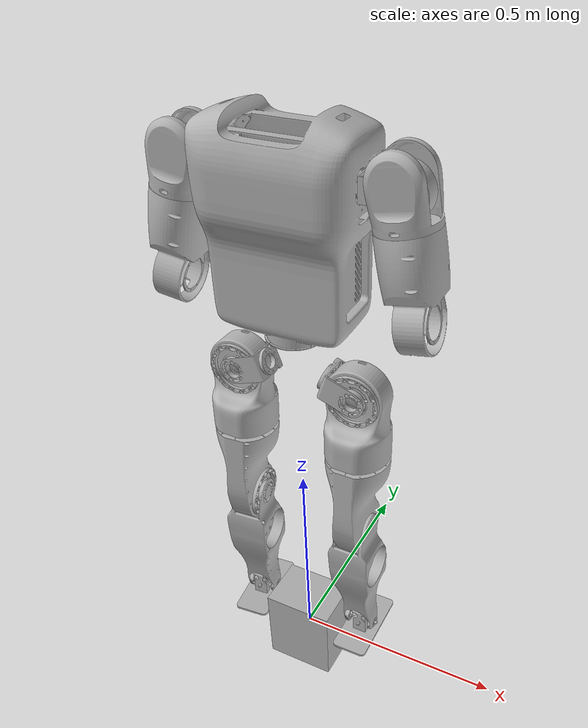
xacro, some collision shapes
<?xml version="1.0"?>
<robot name="Angad_Full_Assembly" xmlns:xacro="http://www.ros.org/wiki/xacro">

  <xacro:include filename="$(find Angad_Full_Assembly_description)/urdf/materials.xacro" />
  <xacro:include filename="$(find Angad_Full_Assembly_description)/urdf/Angad_Full_Assembly.gazebo" />
  <xacro:include
    filename="$(find Angad_Full_Assembly_description)/urdf/Angad_Full_Assembly.ros2_control.xacro" />
  <link name="base_link">
    <inertial>
      <origin xyz="0.002978049443025171 3.331729238924102e-05 0.8249140352934465" rpy="0 0 0" />
      <mass value="5.565" />
      <inertia ixx="0.0272538" iyy="0.0301722" izz="0.0318504" ixy="0" iyz="-6.3931e-06"
        ixz="-8.63068e-05" />
    </inertial>
    <visual>
      <origin xyz="0 0 0" rpy="0 0 0" />
      <geometry>
        <mesh filename="file://$(find Angad_Full_Assembly_description)/meshes/base_link.stl"
          scale="0.001 0.001 0.001" />
      </geometry>
      <material name="silver" />
    </visual>
    <collision>
      <origin xyz="0 0 0" rpy="0 0 0" />
      <geometry>
        <box size="0.174 0.13 0.213089" />
      </geometry>
    </collision>
  </link>

  <link name="hip_L_1">
    <inertial>
      <origin xyz="0.03854907436256218 -0.00377537649362079 -0.014028849509831631" rpy="0 0 0" />
      <mass value="1.008" />
      <inertia ixx="0.00115998" iyy="0.00157855" izz="0.00190361" ixy="0.000204833"
        iyz="-7.34726e-05" ixz="0.000311702" />
    </inertial>
    <visual>
      <origin xyz="-0.06406 -0.0 -0.80394" rpy="0 0 0" />
      <geometry>
        <mesh filename="file://$(find Angad_Full_Assembly_description)/meshes/hip_L_1.stl"
          scale="0.001 0.001 0.001" />
      </geometry>
      <material name="silver" />
    </visual>
    <collision>
      <origin xyz="-0.06406 -0.0 -0.80394" rpy="0 0 0" />
      <geometry>
        <box size="0.130905 0.0571 0.112" />
      </geometry>
    </collision>
  </link>

  <link name="hip_R_1">
    <inertial>
      <origin xyz="-0.038552261262815704 -0.003775357521075904 -0.014020100360895404" rpy="0 0 0" />
      <mass value="1.008" />
      <inertia ixx="0.00115998" iyy="0.00157855" izz="0.00190361" ixy="-0.000204833"
        iyz="-7.34726e-05" ixz="-0.000311702" />
    </inertial>
    <visual>
      <origin xyz="0.06406 -0.0 -0.80394" rpy="0 0 0" />
      <geometry>
        <mesh filename="file://$(find Angad_Full_Assembly_description)/meshes/hip_R_1.stl"
          scale="0.001 0.001 0.001" />
      </geometry>
      <material name="silver" />
    </visual>
    <collision>
      <origin xyz="0.06406 -0.0 -0.80394" rpy="0 0 0" />
      <geometry>
        <box size="0.130905 0.0571 0.112" />
      </geometry>
    </collision>
  </link>

  <link name="thigh_L_1">
    <inertial>
      <origin xyz="-1.40174504655588e-05 -0.030115272344603504 -0.08645138758904114" rpy="0 0 0" />
      <mass value="1.319" />
      <inertia ixx="0.00664321" iyy="0.00731815" izz="0.00393772" ixy="8.98835e-06"
        iyz="0.000276188" ixz="1.22568e-05" />
    </inertial>
    <visual>
      <origin xyz="-0.13829 -0.0315 -0.776903" rpy="0 0 0" />
      <geometry>
        <mesh filename="file://$(find Angad_Full_Assembly_description)/meshes/thigh_L_1.stl"
          scale="0.001 0.001 0.001" />
      </geometry>
      <material name="silver" />
    </visual>
    <collision>
      <origin xyz="-0.13829 -0.0315 -0.776903" rpy="0 0 0" />
      <geometry>
        <box size="0.11 0.112741 0.175" />
      </geometry>
    </collision>
  </link>

  <link name="thigh_R_1">
    <inertial>
      <origin xyz="-0.0020791884572767816 -0.030383815559322697 -0.0863687783674898" rpy="0 0 0" />
      <mass value="1.319" />
      <inertia ixx="0.00664117" iyy="0.00719671" izz="0.00381943" ixy="1.14208e-05"
        iyz="0.000270019" ixz="-7.17876e-05" />
    </inertial>
    <visual>
      <origin xyz="0.138263 -0.0315 -0.77683" rpy="0 0 0" />
      <geometry>
        <mesh filename="file://$(find Angad_Full_Assembly_description)/meshes/thigh_R_1.stl"
          scale="0.001 0.001 0.001" />
      </geometry>
      <material name="silver" />
    </visual>
    <collision>
      <origin xyz="0.138263 -0.0315 -0.77683" rpy="0 0 0" />
      <geometry>
        <box size="0.11 0.112741 0.175" />
      </geometry>
    </collision>
  </link>

  <link name="upper_knee_L_1">
    <inertial>
      <origin xyz="-0.0013353106898234268 -0.005517962362791416 -0.11408271066504616" rpy="0 0 0" />
      <mass value="2.264" />
      <inertia ixx="0.0219197" iyy="0.0193774" izz="0.00704322" ixy="2.59696e-05" iyz="-0.000436015"
        ixz="-0.000475653" />
    </inertial>
    <visual>
      <origin xyz="-0.138295 -0.005168 -0.620317" rpy="0 0 0" />
      <geometry>
        <mesh filename="file://$(find Angad_Full_Assembly_description)/meshes/upper_knee_L_1.stl"
          scale="0.001 0.001 0.001" />
      </geometry>
      <material name="silver" />
    </visual>
    <collision>
      <origin xyz="-0.138295 -0.005168 -0.620317" rpy="0 0 0" />
      <geometry>
        <box size="0.0625 0.125 0.3125" />
      </geometry>
    </collision>
  </link>

  <link name="upper_knee_R_1">
    <inertial>
      <origin xyz="-0.0007904776210841402 -0.005611532850717232 -0.11408357177758233" rpy="0 0 0" />
      <mass value="2.264" />
      <inertia ixx="0.0219137" iyy="0.0193988" izz="0.00702938" ixy="0.00022962" iyz="-0.000418237"
        ixz="0.000168115" />
    </inertial>
    <visual>
      <origin xyz="0.141977 -0.004808 -0.620349" rpy="0 0 0" />
      <geometry>
        <mesh filename="file://$(find Angad_Full_Assembly_description)/meshes/upper_knee_R_1.stl"
          scale="0.001 0.001 0.001" />
      </geometry>
      <material name="silver" />
    </visual>
    <collision>
      <origin xyz="0.141977 -0.004808 -0.620349" rpy="0 0 0" />
      <geometry>
        <box size="0.0625 0.125 0.3125" />
      </geometry>
    </collision>
  </link>

  <link name="lower_knee_L_1">
    <inertial>
      <origin xyz="-0.026381467582163642 0.002587818636810185 -0.14748715164304727" rpy="0 0 0" />
      <mass value="1.446" />
      <inertia ixx="0.0179909" iyy="0.0174857" izz="0.00337026" ixy="1.2e-05" iyz="0.00187816"
        ixz="-4.22513e-05" />
    </inertial>
    <visual>
      <origin xyz="-0.165295 -0.005033 -0.410617" rpy="0 0 0" />
      <geometry>
        <mesh filename="file://$(find Angad_Full_Assembly_description)/meshes/lower_knee_L_1.stl"
          scale="0.001 0.001 0.001" />
      </geometry>
      <material name="silver" />
    </visual>
    <collision>
      <origin xyz="-0.165295 -0.005033 -0.410617" rpy="0 0 0" />
      <geometry>
        <box size="0.087 0.052557 0.388142" />
      </geometry>
    </collision>
  </link>

  <link name="lower_knee_R_1">
    <inertial>
      <origin xyz="0.02249291366303005 0.004807172510886975 -0.14807185562679898" rpy="0 0 0" />
      <mass value="1.446" />
      <inertia ixx="0.0179724" iyy="0.0175592" izz="0.00343161" ixy="0.000133" iyz="0.00182317"
        ixz="-0.000495439" />
    </inertial>
    <visual>
      <origin xyz="0.172267 -0.001544 -0.411313" rpy="0 0 0" />
      <geometry>
        <mesh filename="file://$(find Angad_Full_Assembly_description)/meshes/lower_knee_R_1.stl"
          scale="0.001 0.001 0.001" />
      </geometry>
      <material name="silver" />
    </visual>
    <collision>
      <origin xyz="0.172267 -0.001544 -0.411313" rpy="0 0 0" />
      <geometry>
        <box size="0.087 0.052557 0.388142" />
      </geometry>
    </collision>
  </link>

  <link name="ankle_L_1">
    <inertial>
      <origin xyz="-0.029486478549063777 0.001377277986068716 4.950374079513986e-06" rpy="0 0 0" />
      <mass value="0.10759548262439121" />
      <inertia ixx="1.6e-05" iyy="3.8e-05" izz="5.1e-05" ixy="-0.0" iyz="-0.0" ixz="-0.0" />
    </inertial>
    <visual>
      <origin xyz="-0.169321 -0.030731 -0.047638" rpy="0 0 0" />
      <geometry>
        <mesh filename="file://$(find Angad_Full_Assembly_description)/meshes/ankle_L_1.stl"
          scale="0.001 0.001 0.001" />
      </geometry>
      <material name="silver" />
    </visual>
    <collision>
      <origin xyz="-0.169321 -0.030731 -0.047638" rpy="0 0 0" />
      <geometry>
        <box size="0.087 0.052557 0.388142" />
      </geometry>
    </collision>
  </link>

  <link name="ankle_R_1">
    <inertial>
      <origin xyz="0.029175110656741804 0.004434380289984066 -0.0006992377379477013" rpy="0 0 0" />
      <mass value="0.1075954826243918" />
      <inertia ixx="1.6e-05" iyy="3.8e-05" izz="5.1e-05" ixy="-2e-06" iyz="0.0" ixz="1e-06" />
    </inertial>
    <visual>
      <origin xyz="0.187464 -0.025444 -0.048506" rpy="0 0 0" />
      <geometry>
        <mesh filename="file://$(find Angad_Full_Assembly_description)/meshes/ankle_R_1.stl"
          scale="0.001 0.001 0.001" />
      </geometry>
      <material name="silver" />
    </visual>
    <collision>
      <origin xyz="0.187464 -0.025444 -0.048506" rpy="0 0 0" />
      <geometry>
        <box size="0.087 0.052557 0.388142" />
      </geometry>
    </collision>
  </link>

  <link name="feet_L_1">
    <inertial>
      <origin xyz="1.4590627572308446e-05 -0.030224126757618437 -0.025368031084606422" rpy="0 0 0" />
      <mass value="0.365" />
      <inertia ixx="0.000967774" iyy="0.000266357" izz="0.0010612" ixy="2.4e-05" iyz="1.60238e-05"
        ixz="-0" />
    </inertial>
    <visual>
      <origin xyz="-0.141356 -0.069456 -0.047775" rpy="0 0 0" />
      <geometry>
        <mesh filename="file://$(find Angad_Full_Assembly_description)/meshes/feet_L_1.stl"
          scale="0.001 0.001 0.001" />
      </geometry>
      <material name="silver" />
    </visual>
    <collision>
      <origin xyz="-0.141356 -0.069456 -0.047775" rpy="0 0 0" />
      <geometry>
        <box size="0.08 0.15 0.056" />
      </geometry>
    </collision>
  </link>

  <link name="feet_R_1">
    <inertial>
      <origin xyz="0.0026047017550297202 -0.030217438377113798 -0.025242270995119415" rpy="0 0 0" />
      <mass value="0.365" />
      <inertia ixx="0.000958402" iyy="0.000276032" izz="0.00106089" ixy="8.13281e-05"
        iyz="1.90471e-05" ixz="0" />
    </inertial>
    <visual>
      <origin xyz="0.163716 -0.067164 -0.047827" rpy="0 0 0" />
      <geometry>
        <mesh filename="file://$(find Angad_Full_Assembly_description)/meshes/feet_R_1.stl"
          scale="0.001 0.001 0.001" />
      </geometry>
      <material name="silver" />
    </visual>
    <collision>
      <origin xyz="0.163716 -0.067164 -0.047827" rpy="0 0 0" />
      <geometry>
        <box size="0.08 0.15 0.056" />
      </geometry>
    </collision>
  </link>

  <link name="Torso_1">
    <inertial>
      <origin xyz="0.0012771309079774086 -0.001683956790175145 0.23828496110377373" rpy="0 0 0" />
      <mass value="4.529" />
      <inertia ixx="0.0917624" iyy="0.122035" izz="0.0641058" ixy="-0.000780409" iyz="0.000501789"
        ixz="0.000264244" />
    </inertial>
    <visual>
      <origin xyz="0.0 -0.0 -0.883471" rpy="0 0 0" />
      <geometry>
        <mesh filename="file://$(find Angad_Full_Assembly_description)/meshes/Torso_1.stl"
          scale="0.001 0.001 0.001" />
      </geometry>
      <material name="silver" />
    </visual>
    <collision>
      <origin xyz="0.0 -0.0 -0.883471" rpy="0 0 0" />
      <geometry>
        <box size="0.328659 0.189623 0.416284" />
      </geometry>
    </collision>
  </link>

  <link name="wrist_L_1">
    <inertial>
      <origin xyz="-0.014597822663228288 -0.00032820857286989906 -0.04785735645922662" rpy="0 0 0" />
      <mass value="0.37" />
      <inertia ixx="0.00178209" iyy="0.00196071" izz="0.00063898" ixy="-1.5e-05" iyz="1.7627e-06"
        ixz="0.000172451" />
    </inertial>
    <visual>
      <origin xyz="-0.284491 -0.011757 -0.976612" rpy="0 0 0" />
      <geometry>
        <mesh filename="file://$(find Angad_Full_Assembly_description)/meshes/wrist_L_1.stl"
          scale="0.001 0.001 0.001" />
      </geometry>
      <material name="silver" />
    </visual>
    <collision>
      <origin xyz="-0.284491 -0.011757 -0.976612" rpy="0 0 0" />
      <geometry>
        <box size="0.07 0.08 0.192" />
      </geometry>
    </collision>
  </link>

  <link name="wrist_R_1">
    <inertial>
      <origin xyz="0.018339170582659936 0.0013563551687613635 -0.04850994481380699" rpy="0 0 0" />
      <mass value="0.37" />
      <inertia ixx="0.00176154" iyy="0.00195926" izz="0.000663075" ixy="-7.5e-05" iyz="-3.96611e-05"
        ixz="-0.000232091" />
    </inertial>
    <visual>
      <origin xyz="0.284622 0.004379 -0.976602" rpy="0 0 0" />
      <geometry>
        <mesh filename="file://$(find Angad_Full_Assembly_description)/meshes/wrist_R_1.stl"
          scale="0.001 0.001 0.001" />
      </geometry>
      <material name="silver" />
    </visual>
    <collision>
      <origin xyz="0.284622 0.004379 -0.976602" rpy="0 0 0" />
      <geometry>
        <box size="0.07 0.08 0.192" />
      </geometry>
    </collision>
  </link>

  <link name="shoulder_pitch_L_1">
    <inertial>
      <origin xyz="0.07268848630879282 0.00183776562654197 -3.7835069854885717e-07" rpy="0 0 0" />
      <mass value="0.929" />
      <inertia ixx="0.000771942" iyy="0.00141377" izz="0.000904634" ixy="-1.61427e-05" iyz="-0.0"
        ixz="-0.0" />
    </inertial>
    <visual>
      <origin xyz="-0.142972 -0.003567 -1.207974" rpy="0 0 0" />
      <geometry>
        <mesh
          filename="file://$(find Angad_Full_Assembly_description)/meshes/shoulder_pitch_L_1.stl"
          scale="0.001 0.001 0.001" />
      </geometry>
      <material name="silver" />
    </visual>
    <collision>
      <origin xyz="-0.142972 -0.003567 -1.207974" rpy="0 0 0" />
      <geometry>
        <box size="0.1285 0.0746 0.106" />
      </geometry>
    </collision>
  </link>

  <link name="shoulder_roll_L_1">
    <inertial>
      <origin xyz="0.006820681072588153 0.022543983036535473 -0.04196050745358937" rpy="0 0 0" />
      <mass value="0.64" />
      <inertia ixx="0.0025085" iyy="0.00218566" izz="0.00133528" ixy="-1.06618e-06"
        iyz="5.73603e-05" ixz="0.000212809" />
    </inertial>
    <visual>
      <origin xyz="-0.218947 0.014269 -1.207974" rpy="0 0 0" />
      <geometry>
        <mesh filename="file://$(find Angad_Full_Assembly_description)/meshes/shoulder_roll_L_1.stl"
          scale="0.001 0.001 0.001" />
      </geometry>
      <material name="silver" />
    </visual>
    <collision>
      <origin xyz="-0.218947 0.014269 -1.207974" rpy="0 0 0" />
      <geometry>
        <box size="0.0785 0.0905 0.134" />
      </geometry>
    </collision>
  </link>

  <link name="bicep_L_1">
    <inertial>
      <origin xyz="0.007274821132527365 0.002336663250654977 -0.04402890372206425" rpy="0 0 0" />
      <mass value="0.648" />
      <inertia ixx="0.00326608" iyy="0.0030984" izz="0.00204111" ixy="2.22586e-06" iyz="2.52264e-05"
        ixz="0.000230748" />
    </inertial>
    <visual>
      <origin xyz="-0.237141 -0.010449 -1.101281" rpy="0 0 0" />
      <geometry>
        <mesh filename="file://$(find Angad_Full_Assembly_description)/meshes/bicep_L_1.stl"
          scale="0.001 0.001 0.001" />
      </geometry>
      <material name="silver" />
    </visual>
    <collision>
      <origin xyz="-0.237141 -0.010449 -1.101281" rpy="0 0 0" />
      <geometry>
        <box size="0.067 0.08 0.171" />
      </geometry>
    </collision>
  </link>

  <link name="shoulder_pitch_R_1">
    <inertial>
      <origin xyz="-0.07268831266820741 -0.0018371985546969628 -3.7835063526614476e-07" rpy="0 0 0" />
      <mass value="0.929" />
      <inertia ixx="0.000771942" iyy="0.00141377" izz="0.000904634" ixy="-1.61427e-05" iyz="0.0"
        ixz="0.0" />
    </inertial>
    <visual>
      <origin xyz="0.142971 0.003614 -1.207974" rpy="0 0 0" />
      <geometry>
        <mesh
          filename="file://$(find Angad_Full_Assembly_description)/meshes/shoulder_pitch_R_1.stl"
          scale="0.001 0.001 0.001" />
      </geometry>
      <material name="silver" />
    </visual>
    <collision>
      <origin xyz="0.142971 0.003614 -1.207974" rpy="0 0 0" />
      <geometry>
        <box size="0.1285 0.0746 0.106" />
      </geometry>
    </collision>
  </link>

  <link name="shoulder_roll_R_1">
    <inertial>
      <origin xyz="-0.00797108983942904 0.022169593166912808 -0.041956895738376465" rpy="0 0 0" />
      <mass value="0.64" />
      <inertia ixx="0.00250786" iyy="0.00218651" izz="0.00133485" ixy="1.72721e-05"
        iyz="4.66985e-05" ixz="-0.000214088" />
    </inertial>
    <visual>
      <origin xyz="0.217948 0.025265 -1.207974" rpy="0 0 0" />
      <geometry>
        <mesh filename="file://$(find Angad_Full_Assembly_description)/meshes/shoulder_roll_R_1.stl"
          scale="0.001 0.001 0.001" />
      </geometry>
      <material name="silver" />
    </visual>
    <collision>
      <origin xyz="0.217948 0.025265 -1.207974" rpy="0 0 0" />
      <geometry>
        <box size="0.0785 0.0905 0.134" />
      </geometry>
    </collision>
  </link>

  <link name="bicep_R_1">
    <inertial>
      <origin xyz="-0.008355433029998388 0.0019109890257454605 -0.043859757836306246" rpy="0 0 0" />
      <mass value="0.648" />
      <inertia ixx="0.00326975" iyy="0.00309762" izz="0.00203293" ixy="2.22584e-05"
        iyz="1.18711e-05" ixz="-0.000218874" />
    </inertial>
    <visual>
      <origin xyz="0.237367 0.001498 -1.101281" rpy="0 0 0" />
      <geometry>
        <mesh filename="file://$(find Angad_Full_Assembly_description)/meshes/bicep_R_1.stl"
          scale="0.001 0.001 0.001" />
      </geometry>
      <material name="silver" />
    </visual>
    <collision>
      <origin xyz="0.237367 0.001498 -1.101281" rpy="0 0 0" />
      <geometry>
        <box size="0.067 0.08 0.171" />
      </geometry>
    </collision>
  </link>

  <joint name="hip_pitch_l" type="revolute">
    <origin xyz="0.06406 0.0 0.80394" rpy="0 0 0" />
    <parent link="base_link" />
    <child link="hip_L_1" />
    <axis xyz="-0.939693 0.0 0.34202" />
    <limit effort="100.0" velocity="5.0" lower="-1.57" upper="1.57" />
    <dynamics damping="0.1" friction="0.0" />
  </joint>

  <joint name="hip_pitch_r" type="revolute">
    <origin xyz="-0.06406 0.0 0.80394" rpy="0 0 0" />
    <parent link="base_link" />
    <child link="hip_R_1" />
    <axis xyz="0.939693 0.0 0.34202" />
    <limit effort="100.0" velocity="5.0" lower="-1.57" upper="1.57" />
    <dynamics damping="0.1" friction="0.0" />
  </joint>

  <joint name="thigh_roll_l" type="revolute">
    <origin xyz="0.07423 0.0315 -0.027037" rpy="0 0 0" />
    <parent link="hip_L_1" />
    <child link="thigh_L_1" />
    <axis xyz="0.0 1.0 0.0" />
    <limit effort="100.0" velocity="5.0" lower="-0.5" upper="0.5" />
    <dynamics damping="0.1" friction="0.0" />
  </joint>

  <joint name="thigh_roll_r" type="revolute">
    <origin xyz="-0.074203 0.0315 -0.02711" rpy="0 0 0" />
    <parent link="hip_R_1" />
    <child link="thigh_R_1" />
    <axis xyz="0.0 1.0 0.0" />
    <limit effort="100.0" velocity="5.0" lower="-0.5" upper="0.5" />
    <dynamics damping="0.1" friction="0.0" />
  </joint>

  <joint name="thigh_yaw_l" type="revolute">
    <origin xyz="5e-06 -0.026332 -0.156586" rpy="0 0 0" />
    <parent link="thigh_L_1" />
    <child link="upper_knee_L_1" />
    <axis xyz="0.0 0.0 -1.0" />
    <limit effort="100.0" velocity="5.0" lower="-0.5" upper="0.5" />
    <dynamics damping="0.1" friction="0.0" />
  </joint>

  <joint name="thigh_yaw_r" type="revolute">
    <origin xyz="-0.003714 -0.026692 -0.156481" rpy="0 0 0" />
    <parent link="thigh_R_1" />
    <child link="upper_knee_R_1" />
    <axis xyz="0.0 0.0 -1.0" />
    <limit effort="100.0" velocity="5.0" lower="-0.5" upper="0.5" />
    <dynamics damping="0.1" friction="0.0" />
  </joint>

  <joint name="knee_pitch_l" type="revolute">
    <origin xyz="0.027 -0.000135 -0.2097" rpy="0 0 0" />
    <parent link="upper_knee_L_1" />
    <child link="lower_knee_L_1" />
    <axis xyz="1.0 0.0 0.0" />
    <limit effort="100.0" velocity="5.0" lower="-2.0" upper="2.0" />
    <dynamics damping="0.1" friction="0.0" />
  </joint>

  <joint name="knee_pitch_r" type="revolute">
    <origin xyz="-0.03029 -0.003264 -0.209036" rpy="0 0 0" />
    <parent link="upper_knee_R_1" />
    <child link="lower_knee_R_1" />
    <axis xyz="1.0 0.0 0.0" />
    <limit effort="100.0" velocity="5.0" lower="-2.0" upper="2.0" />
    <dynamics damping="0.1" friction="0.0" />
  </joint>

  <joint name="ankle_pitch_l" type="revolute">
    <origin xyz="0.004026 0.025698 -0.362979" rpy="0 0 0" />
    <parent link="lower_knee_L_1" />
    <child link="ankle_L_1" />
    <axis xyz="1.0 0.0 0.0" />
    <limit effort="100.0" velocity="5.0" lower="-1.0" upper="1.0" />
    <dynamics damping="0.1" friction="0.0" />
  </joint>

  <joint name="ankle_pitch_r" type="revolute">
    <origin xyz="-0.015197 0.0239 -0.362807" rpy="0 0 0" />
    <parent link="lower_knee_R_1" />
    <child link="ankle_R_1" />
    <axis xyz="1.0 0.0 0.0" />
    <limit effort="100.0" velocity="5.0" lower="-1.0" upper="1.0" />
    <dynamics damping="0.1" friction="0.0" />
  </joint>

  <joint name="ankle_roll_l" type="revolute">
    <origin xyz="-0.027965 0.038725 0.000137" rpy="0 0 0" />
    <parent link="ankle_L_1" />
    <child link="feet_L_1" />
    <axis xyz="0.0 -1.0 0.0" />
    <limit effort="100.0" velocity="5.0" lower="-0.5" upper="0.5" />
    <dynamics damping="0.1" friction="0.0" />
  </joint>

  <joint name="ankle_roll_r" type="revolute">
    <origin xyz="0.023748 0.04172 -0.000679" rpy="0 0 0" />
    <parent link="ankle_R_1" />
    <child link="feet_R_1" />
    <axis xyz="0.0 -1.0 0.0" />
    <limit effort="100.0" velocity="5.0" lower="-0.5" upper="0.5" />
    <dynamics damping="0.1" friction="0.0" />
  </joint>

  <link name="torso_pitch_link">
    <inertial>
      <origin xyz="0 0 0" rpy="0 0 0" />
      <mass value="0.01" />
      <inertia ixx="0.0001" iyy="0.0001" izz="0.0001" ixy="0.0" iyz="0.0" ixz="0.0" />
    </inertial>
  </link>

  <joint name="torso_pitch" type="revolute">
    <origin xyz="0.0 0.0 0.883471" rpy="0 0 0" />
    <parent link="base_link" />
    <child link="torso_pitch_link" />
    <axis xyz="0.0 1.0 0.0" />
    <limit effort="100.0" velocity="5.0" lower="-1.57" upper="1.57" />
    <dynamics damping="0.1" friction="0.0" />
  </joint>

  <link name="torso_roll_link">
    <inertial>
      <origin xyz="0 0 0" rpy="0 0 0" />
      <mass value="0.01" />
      <inertia ixx="0.0001" iyy="0.0001" izz="0.0001" ixy="0.0" iyz="0.0" ixz="0.0" />
    </inertial>
  </link>

  <joint name="torso_roll" type="revolute">
    <origin xyz="0.0 0.0 0.0" rpy="0 0 0" />
    <parent link="torso_pitch_link" />
    <child link="torso_roll_link" />
    <axis xyz="1.0 0.0 0.0" />
    <limit effort="100.0" velocity="5.0" lower="-1.57" upper="1.57" />
    <dynamics damping="0.1" friction="0.0" />
  </joint>

  <joint name="torso_yaw" type="revolute">
    <origin xyz="0.0 0.0 0.0" rpy="0 0 0" />
    <parent link="torso_roll_link" />
    <child link="Torso_1" />
    <axis xyz="-0.0 -0.0 1.0" />
    <limit effort="100.0" velocity="5.0" lower="-1.57" upper="1.57" />
    <dynamics damping="0.1" friction="0.0" />
  </joint>

  <joint name="elbow_pitch_l" type="revolute">
    <origin xyz="0.04735 0.001308 -0.124669" rpy="0 0 0" />
    <parent link="bicep_L_1" />
    <child link="wrist_L_1" />
    <axis xyz="-0.984371 -0.029347 -0.173646" />
    <limit effort="100.0" velocity="5.0" lower="-1.57" upper="1.57" />
    <dynamics damping="0.1" friction="0.0" />
  </joint>

  <joint name="elbow_pitch_r" type="revolute">
    <origin xyz="-0.047255 -0.002881 -0.124679" rpy="0 0 0" />
    <parent link="bicep_R_1" />
    <child link="wrist_R_1" />
    <axis xyz="-0.980548 -0.092247 0.173253" />
    <limit effort="100.0" velocity="5.0" lower="-1.57" upper="1.57" />
    <dynamics damping="0.1" friction="0.0" />
  </joint>

  <joint name="shoulder_pitch_l" type="revolute">
    <origin xyz="0.142972 0.003567 0.324503" rpy="0 0 0" />
    <parent link="Torso_1" />
    <child link="shoulder_pitch_L_1" />
    <axis xyz="0.999681 0.025268 0.0" />
    <limit upper="3.141593" lower="-3.141593" effort="100" velocity="100" />
    <dynamics damping="0.1" friction="0.0" />
  </joint>

  <joint name="shoulder_roll_l" type="revolute">
    <origin xyz="0.075975 -0.017836 0.0" rpy="0 0 0" />
    <parent link="shoulder_pitch_L_1" />
    <child link="shoulder_roll_L_1" />
    <axis xyz="0.025268 -0.999681 -0.0" />
    <limit upper="2.792527" lower="0.0" effort="100" velocity="100" />
    <dynamics damping="0.1" friction="0.0" />
  </joint>

  <joint name="elbow_yaw_l" type="revolute">
    <origin xyz="0.018194 0.024718 -0.106693" rpy="0 0 0" />
    <parent link="shoulder_roll_L_1" />
    <child link="bicep_L_1" />
    <axis xyz="0.173593 0.004388 -0.984808" />
    <limit upper="3.141593" lower="-3.141593" effort="100" velocity="100" />
    <dynamics damping="0.1" friction="0.0" />
  </joint>

  <joint name="shoulder_pitch_r" type="revolute">
    <origin xyz="-0.142971 -0.003614 0.324503" rpy="0 0 0" />
    <parent link="Torso_1" />
    <child link="shoulder_pitch_R_1" />
    <axis xyz="0.999681 0.025268 -0.0" />
    <limit upper="3.141593" lower="-3.141593" effort="100" velocity="100" />
    <dynamics damping="0.1" friction="0.0" />
  </joint>

  <joint name="shoulder_roll_r" type="revolute">
    <origin xyz="-0.074977 -0.021651 0.0" rpy="0 0 0" />
    <parent link="shoulder_pitch_R_1" />
    <child link="shoulder_roll_R_1" />
    <axis xyz="0.025268 -0.999681 -0.0" />
    <limit upper="0.174533" lower="-2.879793" effort="100" velocity="100" />
    <dynamics damping="0.1" friction="0.0" />
  </joint>

  <joint name="elbow_yaw_r" type="revolute">
    <origin xyz="-0.019419 0.023767 -0.106693" rpy="0 0 0" />
    <parent link="shoulder_roll_R_1" />
    <child link="bicep_R_1" />
    <axis xyz="-0.173593 -0.004388 -0.984808" />
    <limit upper="3.141593" lower="-3.141593" effort="100" velocity="100" />
    <dynamics damping="0.1" friction="0.0" />
  </joint>

  <xacro:angad_ros2_control name="GazeboSimSystem" />

</robot>

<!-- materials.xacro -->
<robot name="Angad_Full_Assembly" xmlns:xacro="http://www.ros.org/wiki/xacro" >

<material name="silver">
  <color rgba="0.700 0.700 0.700 1.000"/>
</material>

</robot>

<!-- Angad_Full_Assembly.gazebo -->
<robot name="Angad_Full_Assembly" xmlns:xacro="http://www.ros.org/wiki/xacro" >

<xacro:property name="body_color" value="Gazebo/Silver" />

<gazebo>
  <plugin filename="libgz_ros2_control-system.so" name="gz_ros2_control::GazeboSimROS2ControlPlugin">
    <parameters>$(find Angad_Full_Assembly_description)/config/ros2_controllers.yaml</parameters>
  </plugin>
  <plugin filename="gz-sim-imu-system" name="gz::sim::systems::Imu">
  </plugin>
</gazebo>
<gazebo reference="base_link">
  <material>${body_color}</material>
  <mu1>0.5</mu1>
  <mu2>0.5</mu2>
  <self_collide>true</self_collide>
  <gravity>true</gravity>
</gazebo>

<gazebo reference="hip_L_1">
  <material>${body_color}</material>
  <mu1>0.5</mu1>
  <mu2>0.5</mu2>
  <self_collide>true</self_collide>
</gazebo>

<gazebo reference="hip_R_1">
  <material>${body_color}</material>
  <mu1>0.5</mu1>
  <mu2>0.5</mu2>
  <self_collide>true</self_collide>
</gazebo>

<gazebo reference="thigh_L_1">
  <material>${body_color}</material>
  <mu1>0.5</mu1>
  <mu2>0.5</mu2>
  <self_collide>true</self_collide>
</gazebo>

<gazebo reference="thigh_R_1">
  <material>${body_color}</material>
  <mu1>0.5</mu1>
  <mu2>0.5</mu2>
  <self_collide>true</self_collide>
</gazebo>

<gazebo reference="upper_knee_L_1">
  <material>${body_color}</material>
  <mu1>0.5</mu1>
  <mu2>0.5</mu2>
  <self_collide>true</self_collide>
</gazebo>

<gazebo reference="upper_knee_R_1">
  <material>${body_color}</material>
  <mu1>0.5</mu1>
  <mu2>0.5</mu2>
  <self_collide>true</self_collide>
</gazebo>

<gazebo reference="lower_knee_L_1">
  <material>${body_color}</material>
  <mu1>0.5</mu1>
  <mu2>0.5</mu2>
  <self_collide>true</self_collide>
</gazebo>

<gazebo reference="lower_knee_R_1">
  <material>${body_color}</material>
  <mu1>0.5</mu1>
  <mu2>0.5</mu2>
  <self_collide>true</self_collide>
</gazebo>

<gazebo reference="ankle_L_1">
  <material>${body_color}</material>
  <mu1>0.5</mu1>
  <mu2>0.5</mu2>
  <self_collide>true</self_collide>
</gazebo>

<gazebo reference="ankle_R_1">
  <material>${body_color}</material>
  <mu1>0.5</mu1>
  <mu2>0.5</mu2>
  <self_collide>true</self_collide>
</gazebo>

<gazebo reference="feet_L_1">
  <material>${body_color}</material>
  <mu1>2.0</mu1>
  <mu2>2.0</mu2>
  <kp>1000000.0</kp>
  <kd>1.0</kd>
  <self_collide>true</self_collide>
</gazebo>

<gazebo reference="feet_R_1">
  <material>${body_color}</material>
  <mu1>2.0</mu1>
  <mu2>2.0</mu2>
  <kp>1000000.0</kp>
  <kd>1.0</kd>
  <self_collide>true</self_collide>
</gazebo>

<gazebo reference="Torso_1">
  <material>${body_color}</material>
  <mu1>0.5</mu1>
  <mu2>0.5</mu2>
  <self_collide>true</self_collide>
  <sensor name="imu_sensor" type="imu">
    <always_on>1</always_on>
    <update_rate>100</update_rate>
    <visualize>true</visualize>
    <topic>imu</topic>
  </sensor>
</gazebo>

<gazebo reference="wrist_L_1">
  <material>${body_color}</material>
  <mu1>0.5</mu1>
  <mu2>0.5</mu2>
  <self_collide>true</self_collide>
</gazebo>

<gazebo reference="wrist_R_1">
  <material>${body_color}</material>
  <mu1>0.5</mu1>
  <mu2>0.5</mu2>
  <self_collide>true</self_collide>
</gazebo>

<gazebo reference="shoulder_pitch_L_1">
  <material>${body_color}</material>
  <mu1>0.5</mu1>
  <mu2>0.5</mu2>
  <self_collide>true</self_collide>
</gazebo>

<gazebo reference="shoulder_roll_L_1">
  <material>${body_color}</material>
  <mu1>0.5</mu1>
  <mu2>0.5</mu2>
  <self_collide>true</self_collide>
</gazebo>

<gazebo reference="bicep_L_1">
  <material>${body_color}</material>
  <mu1>0.5</mu1>
  <mu2>0.5</mu2>
  <self_collide>true</self_collide>
</gazebo>

<gazebo reference="shoulder_pitch_R_1">
  <material>${body_color}</material>
  <mu1>0.5</mu1>
  <mu2>0.5</mu2>
  <self_collide>true</self_collide>
</gazebo>

<gazebo reference="shoulder_roll_R_1">
  <material>${body_color}</material>
  <mu1>0.5</mu1>
  <mu2>0.5</mu2>
  <self_collide>true</self_collide>
</gazebo>

<gazebo reference="bicep_R_1">
  <material>${body_color}</material>
  <mu1>0.5</mu1>
  <mu2>0.5</mu2>
  <self_collide>true</self_collide>
</gazebo>

</robot>
